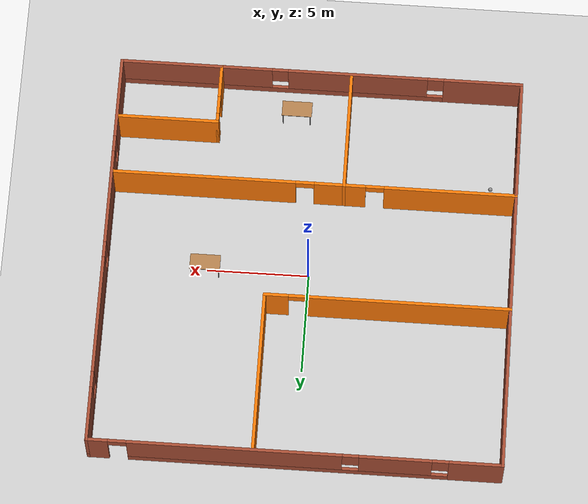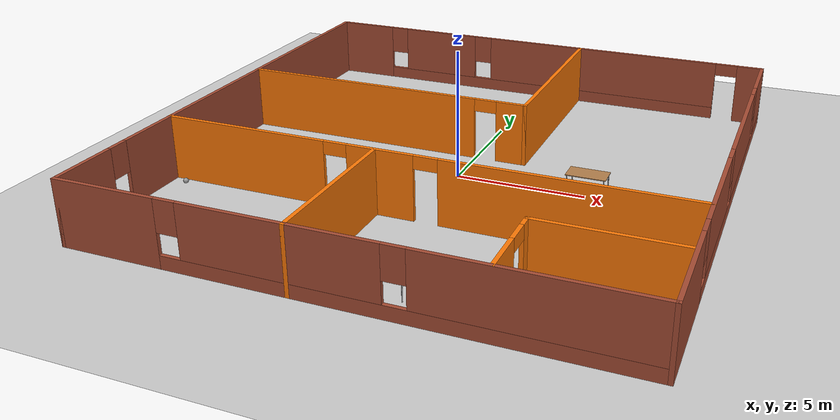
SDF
<sdf version="1.6">
 <world name="default">
  <plugin name="welcome_message" filename="libwelcome_message.so"/>
  <light name="sun" type="directional">
   <pose>0 0 10 0 -0 0</pose>
   <diffuse>0.8 0.8 0.8 1</diffuse>
   <specular>0.2 0.2 0.2 1</specular>
   <attenuation>
    <range>1000</range>
    <constant>0.9</constant>
    <linear>0.01</linear>
    <quadratic>0.001</quadratic>
   </attenuation>
   <direction>-0.5 0.1 -0.9</direction>
  </light>
  <model name="ground_plane">
   <static>1</static>
   <link name="link">
    <collision name="collision">
     <geometry><plane><normal>0 0 1</normal><size>100 100</size></plane></geometry>
     <surface><friction><ode><mu>100</mu><mu2>50</mu2></ode></friction></surface>
    </collision>
    <visual name="visual">
     <cast_shadows>0</cast_shadows>
     <geometry><plane><normal>0 0 1</normal><size>100 100</size></plane></geometry>
     <material>
      <script><uri>file://media/materials/scripts/gazebo.material</uri><name>Gazebo/Grey</name></script>
     </material>
    </visual>
   </link>
  </model>
  <gravity>0 0 -9.8</gravity>
  <magnetic_field>6e-06 2.3e-05 -4.2e-05</magnetic_field>
  <atmosphere type="adiabatic"/>
  <physics name="default_physics" default="0" type="ode">
   <max_step_size>0.001</max_step_size>
   <real_time_factor>1</real_time_factor>
   <real_time_update_rate>1000</real_time_update_rate>
  </physics>
  <scene><ambient>0.4 0.4 0.4 1</ambient><background>0.7 0.7 0.7 1</background><shadows>1</shadows></scene>
  <spherical_coordinates>
   <surface_model>EARTH_WGS84</surface_model>
   <latitude_deg>0</latitude_deg>
   <longitude_deg>0</longitude_deg>
   <elevation>0</elevation>
   <heading_deg>0</heading_deg>
  </spherical_coordinates>
  <model name="Building">
   <link name="Wall_0">
    <pose>0 10 0 0 -0 0</pose>
    <visual name="Wall_0_Visual_0">
     <pose>-8.74573 0 1.25 0 -0 0</pose>
     <geometry><box><size>2.65853 0.15 2.5</size></box></geometry>
     <material>
      <script><uri>file://media/materials/scripts/gazebo.material</uri><name>Gazebo/Bricks</name></script>
      <ambient>1 1 1 1</ambient>
     </material>
     <meta><layer>0</layer></meta>
    </visual>
    <collision name="Wall_0_Collision_0">
     <geometry><box><size>2.65853 0.15 2.5</size></box></geometry>
     <pose>-8.74573 0 1.25 0 -0 0</pose>
    </collision>
    <visual name="Wall_0_Visual_1">
     <pose>9.52682 0 1.25 0 -0 0</pose>
     <geometry><box><size>1.09635 0.15 2.5</size></box></geometry>
     <material>
      <script><uri>file://media/materials/scripts/gazebo.material</uri><name>Gazebo/Bricks</name></script>
      <ambient>1 1 1 1</ambient>
     </material>
     <meta><layer>0</layer></meta>
    </visual>
    <collision name="Wall_0_Collision_1">
     <geometry><box><size>1.09635 0.15 2.5</size></box></geometry>
     <pose>9.52682 0 1.25 0 -0 0</pose>
    </collision>
    <visual name="Wall_0_Visual_2">
     <pose>0.331089 0 0.25 0 -0 0</pose>
     <geometry><box><size>15.4951 0.15 0.5</size></box></geometry>
     <material>
      <script><uri>file://media/materials/scripts/gazebo.material</uri><name>Gazebo/Bricks</name></script>
      <ambient>1 1 1 1</ambient>
     </material>
     <meta><layer>0</layer></meta>
    </visual>
    <collision name="Wall_0_Collision_2">
     <geometry><box><size>15.4951 0.15 0.5</size></box></geometry>
     <pose>0.331089 0 0.25 0 -0 0</pose>
    </collision>
    <visual name="Wall_0_Visual_3">
     <pose>-4.85741 0 1.5 0 -0 0</pose>
     <geometry><box><size>3.51812 0.15 2</size></box></geometry>
     <material>
      <script><uri>file://media/materials/scripts/gazebo.material</uri><name>Gazebo/Bricks</name></script>
      <ambient>1 1 1 1</ambient>
     </material>
     <meta><layer>0</layer></meta>
    </visual>
    <collision name="Wall_0_Collision_3">
     <geometry><box><size>3.51812 0.15 2</size></box></geometry>
     <pose>-4.85741 0 1.5 0 -0 0</pose>
    </collision>
    <visual name="Wall_0_Visual_4">
     <pose>2.89015 0 1.5 0 -0 0</pose>
     <geometry><box><size>10.377 0.15 2</size></box></geometry>
     <material>
      <script><uri>file://media/materials/scripts/gazebo.material</uri><name>Gazebo/Bricks</name></script>
      <ambient>1 1 1 1</ambient>
     </material>
     <meta><layer>0</layer></meta>
    </visual>
    <collision name="Wall_0_Collision_4">
     <geometry><box><size>10.377 0.15 2</size></box></geometry>
     <pose>2.89015 0 1.5 0 -0 0</pose>
    </collision>
    <visual name="Wall_0_Visual_5">
     <pose>-7.01647 0 1.9 0 -0 0</pose>
     <geometry><box><size>0.8 0.15 1.2</size></box></geometry>
     <material>
      <script><uri>file://media/materials/scripts/gazebo.material</uri><name>Gazebo/Bricks</name></script>
      <ambient>1 1 1 1</ambient>
     </material>
     <meta><layer>0</layer></meta>
    </visual>
    <collision name="Wall_0_Collision_5">
     <geometry><box><size>0.8 0.15 1.2</size></box></geometry>
     <pose>-7.01647 0 1.9 0 -0 0</pose>
    </collision>
    <visual name="Wall_0_Visual_6">
     <pose>-2.69835 0 1.9 0 -0 0</pose>
     <geometry><box><size>0.8 0.15 1.2</size></box></geometry>
     <material>
      <script><uri>file://media/materials/scripts/gazebo.material</uri><name>Gazebo/Bricks</name></script>
      <ambient>1 1 1 1</ambient>
     </material>
     <meta><layer>0</layer></meta>
    </visual>
    <collision name="Wall_0_Collision_6">
     <geometry><box><size>0.8 0.15 1.2</size></box></geometry>
     <pose>-2.69835 0 1.9 0 -0 0</pose>
    </collision>
    <visual name="Wall_0_Visual_7">
     <pose>8.52865 0 2.25 0 -0 0</pose>
     <geometry><box><size>0.9 0.15 0.5</size></box></geometry>
     <material>
      <script><uri>file://media/materials/scripts/gazebo.material</uri><name>Gazebo/Bricks</name></script>
      <ambient>1 1 1 1</ambient>
     </material>
     <meta><layer>0</layer></meta>
    </visual>
    <collision name="Wall_0_Collision_7">
     <geometry><box><size>0.9 0.15 0.5</size></box></geometry>
     <pose>8.52865 0 2.25 0 -0 0</pose>
    </collision>
   </link>
   <link name="Wall_10">
    <collision name="Wall_10_Collision">
     <geometry><box><size>8.15 0.15 2.5</size></box></geometry>
     <pose>0 0 1.25 0 -0 0</pose>
    </collision>
    <visual name="Wall_10_Visual">
     <pose>0 0 1.25 0 -0 0</pose>
     <geometry><box><size>8.15 0.15 2.5</size></box></geometry>
     <material>
      <script><uri>file://media/materials/scripts/gazebo.material</uri><name>Gazebo/Grey</name></script>
      <ambient>0.996078 0.47451 0.0196078 1</ambient>
     </material>
     <meta><layer>0</layer></meta>
    </visual>
    <pose>2 6 0 0 -0 1.5708</pose>
   </link>
   <link name="Wall_12">
    <pose>0 -4 0 0 -0 0</pose>
    <visual name="Wall_12_Visual_0">
     <pose>-6.77572 0 1.25 0 -0 0</pose>
     <geometry><box><size>6.59856 0.15 2.5</size></box></geometry>
     <material>
      <script><uri>file://media/materials/scripts/gazebo.material</uri><name>Gazebo/Grey</name></script>
      <ambient>0.996078 0.47451 0.0196078 1</ambient>
     </material>
     <meta><layer>0</layer></meta>
    </visual>
    <collision name="Wall_12_Collision_0">
     <geometry><box><size>6.59856 0.15 2.5</size></box></geometry>
     <pose>-6.77572 0 1.25 0 -0 0</pose>
    </collision>
    <visual name="Wall_12_Visual_1">
     <pose>-1.29743 0 1.25 0 -0 0</pose>
     <geometry><box><size>2.55803 0.15 2.5</size></box></geometry>
     <material>
      <script><uri>file://media/materials/scripts/gazebo.material</uri><name>Gazebo/Grey</name></script>
      <ambient>0.996078 0.47451 0.0196078 1</ambient>
     </material>
     <meta><layer>0</layer></meta>
    </visual>
    <collision name="Wall_12_Collision_1">
     <geometry><box><size>2.55803 0.15 2.5</size></box></geometry>
     <pose>-1.29743 0 1.25 0 -0 0</pose>
    </collision>
    <visual name="Wall_12_Visual_2">
     <pose>5.47829 0 1.25 0 -0 0</pose>
     <geometry><box><size>9.19341 0.15 2.5</size></box></geometry>
     <material>
      <script><uri>file://media/materials/scripts/gazebo.material</uri><name>Gazebo/Grey</name></script>
      <ambient>0.996078 0.47451 0.0196078 1</ambient>
     </material>
     <meta><layer>0</layer></meta>
    </visual>
    <collision name="Wall_12_Collision_2">
     <geometry><box><size>9.19341 0.15 2.5</size></box></geometry>
     <pose>5.47829 0 1.25 0 -0 0</pose>
    </collision>
    <visual name="Wall_12_Visual_3">
     <pose>-3.02644 0 2.25 0 -0 0</pose>
     <geometry><box><size>0.9 0.15 0.5</size></box></geometry>
     <material>
      <script><uri>file://media/materials/scripts/gazebo.material</uri><name>Gazebo/Grey</name></script>
      <ambient>0.996078 0.47451 0.0196078 1</ambient>
     </material>
     <meta><layer>0</layer></meta>
    </visual>
    <collision name="Wall_12_Collision_3">
     <geometry><box><size>0.9 0.15 0.5</size></box></geometry>
     <pose>-3.02644 0 2.25 0 -0 0</pose>
    </collision>
    <visual name="Wall_12_Visual_4">
     <pose>0.431586 0 2.25 0 -0 0</pose>
     <geometry><box><size>0.9 0.15 0.5</size></box></geometry>
     <material>
      <script><uri>file://media/materials/scripts/gazebo.material</uri><name>Gazebo/Grey</name></script>
      <ambient>0.996078 0.47451 0.0196078 1</ambient>
     </material>
     <meta><layer>0</layer></meta>
    </visual>
    <collision name="Wall_12_Collision_4">
     <geometry><box><size>0.9 0.15 0.5</size></box></geometry>
     <pose>0.431586 0 2.25 0 -0 0</pose>
    </collision>
   </link>
   <link name="Wall_14">
    <collision name="Wall_14_Collision">
     <geometry><box><size>6.15 0.15 2.5</size></box></geometry>
     <pose>0 0 1.25 0 -0 0</pose>
    </collision>
    <visual name="Wall_14_Visual">
     <pose>0 0 1.25 0 -0 0</pose>
     <geometry><box><size>6.15 0.15 2.5</size></box></geometry>
     <material>
      <script><uri>file://media/materials/scripts/gazebo.material</uri><name>Gazebo/Grey</name></script>
      <ambient>0.996078 0.47451 0.0196078 1</ambient>
     </material>
     <meta><layer>0</layer></meta>
    </visual>
    <pose>-1.5 -7 0 0 0 -1.5708</pose>
   </link>
   <link name="Wall_16">
    <pose>5 -8.5 0 0 -0 1.5708</pose>
    <visual name="Wall_16_Visual_0">
     <pose>-0.715498 0 1.25 0 -0 0</pose>
     <geometry><box><size>1.719 0.15 2.5</size></box></geometry>
     <material>
      <script><uri>file://media/materials/scripts/gazebo.material</uri><name>Gazebo/Grey</name></script>
      <ambient>0.996078 0.47451 0.0196078 1</ambient>
     </material>
     <meta><layer>0</layer></meta>
    </visual>
    <collision name="Wall_16_Collision_0">
     <geometry><box><size>1.719 0.15 2.5</size></box></geometry>
     <pose>-0.715498 0 1.25 0 -0 0</pose>
    </collision>
    <visual name="Wall_16_Visual_1">
     <pose>1.3095 0 1.25 0 -0 0</pose>
     <geometry><box><size>0.530996 0.15 2.5</size></box></geometry>
     <material>
      <script><uri>file://media/materials/scripts/gazebo.material</uri><name>Gazebo/Grey</name></script>
      <ambient>0.996078 0.47451 0.0196078 1</ambient>
     </material>
     <meta><layer>0</layer></meta>
    </visual>
    <collision name="Wall_16_Collision_1">
     <geometry><box><size>0.530996 0.15 2.5</size></box></geometry>
     <pose>1.3095 0 1.25 0 -0 0</pose>
    </collision>
    <visual name="Wall_16_Visual_2">
     <pose>0.594004 0 2.25 0 -0 0</pose>
     <geometry><box><size>0.9 0.15 0.5</size></box></geometry>
     <material>
      <script><uri>file://media/materials/scripts/gazebo.material</uri><name>Gazebo/Grey</name></script>
      <ambient>0.996078 0.47451 0.0196078 1</ambient>
     </material>
     <meta><layer>0</layer></meta>
    </visual>
    <collision name="Wall_16_Collision_2">
     <geometry><box><size>0.9 0.15 0.5</size></box></geometry>
     <pose>0.594004 0 2.25 0 -0 0</pose>
    </collision>
   </link>
   <link name="Wall_18">
    <collision name="Wall_18_Collision">
     <geometry><box><size>5 0.15 2.5</size></box></geometry>
     <pose>0 0 1.25 0 -0 0</pose>
    </collision>
    <visual name="Wall_18_Visual">
     <pose>0 0 1.25 0 -0 0</pose>
     <geometry><box><size>5 0.15 2.5</size></box></geometry>
     <material>
      <script><uri>file://media/materials/scripts/gazebo.material</uri><name>Gazebo/Grey</name></script>
      <ambient>0.996078 0.47451 0.0196078 1</ambient>
     </material>
     <meta><layer>0</layer></meta>
    </visual>
    <pose>7.425 -7 0 0 -0 0</pose>
   </link>
   <link name="Wall_2">
    <pose>-10 0 0 0 0 -1.5708</pose>
    <visual name="Wall_2_Visual_0">
     <pose>-1.74058 0 1.25 0 -0 0</pose>
     <geometry><box><size>16.6688 0.15 2.5</size></box></geometry>
     <material>
      <script><uri>file://media/materials/scripts/gazebo.material</uri><name>Gazebo/Bricks</name></script>
      <ambient>1 1 1 1</ambient>
     </material>
     <meta><layer>0</layer></meta>
    </visual>
    <collision name="Wall_2_Collision_0">
     <geometry><box><size>16.6688 0.15 2.5</size></box></geometry>
     <pose>-1.74058 0 1.25 0 -0 0</pose>
    </collision>
    <visual name="Wall_2_Visual_1">
     <pose>8.33442 0 0.25 0 -0 0</pose>
     <geometry><box><size>3.48116 0.15 0.5</size></box></geometry>
     <material>
      <script><uri>file://media/materials/scripts/gazebo.material</uri><name>Gazebo/Bricks</name></script>
      <ambient>1 1 1 1</ambient>
     </material>
     <meta><layer>0</layer></meta>
    </visual>
    <collision name="Wall_2_Collision_1">
     <geometry><box><size>3.48116 0.15 0.5</size></box></geometry>
     <pose>8.33442 0 0.25 0 -0 0</pose>
    </collision>
    <visual name="Wall_2_Visual_2">
     <pose>8.73442 0 1.5 0 -0 0</pose>
     <geometry><box><size>2.68116 0.15 2</size></box></geometry>
     <material>
      <script><uri>file://media/materials/scripts/gazebo.material</uri><name>Gazebo/Bricks</name></script>
      <ambient>1 1 1 1</ambient>
     </material>
     <meta><layer>0</layer></meta>
    </visual>
    <collision name="Wall_2_Collision_2">
     <geometry><box><size>2.68116 0.15 2</size></box></geometry>
     <pose>8.73442 0 1.5 0 -0 0</pose>
    </collision>
    <visual name="Wall_2_Visual_3">
     <pose>6.99384 0 1.9 0 -0 0</pose>
     <geometry><box><size>0.8 0.15 1.2</size></box></geometry>
     <material>
      <script><uri>file://media/materials/scripts/gazebo.material</uri><name>Gazebo/Bricks</name></script>
      <ambient>1 1 1 1</ambient>
     </material>
     <meta><layer>0</layer></meta>
    </visual>
    <collision name="Wall_2_Collision_3">
     <geometry><box><size>0.8 0.15 1.2</size></box></geometry>
     <pose>6.99384 0 1.9 0 -0 0</pose>
    </collision>
   </link>
   <link name="Wall_4">
    <pose>0 -10 0 0 -0 0</pose>
    <visual name="Wall_4_Visual_0">
     <pose>-8.09282 0 1.25 0 -0 0</pose>
     <geometry><box><size>3.96436 0.15 2.5</size></box></geometry>
     <material>
      <script><uri>file://media/materials/scripts/gazebo.material</uri><name>Gazebo/Bricks</name></script>
      <ambient>1 1 1 1</ambient>
     </material>
     <meta><layer>0</layer></meta>
    </visual>
    <collision name="Wall_4_Collision_0">
     <geometry><box><size>3.96436 0.15 2.5</size></box></geometry>
     <pose>-8.09282 0 1.25 0 -0 0</pose>
    </collision>
    <visual name="Wall_4_Visual_1">
     <pose>1.98218 0 0.25 0 -0 0</pose>
     <geometry><box><size>16.1856 0.15 0.5</size></box></geometry>
     <material>
      <script><uri>file://media/materials/scripts/gazebo.material</uri><name>Gazebo/Bricks</name></script>
      <ambient>1 1 1 1</ambient>
     </material>
     <meta><layer>0</layer></meta>
    </visual>
    <collision name="Wall_4_Collision_1">
     <geometry><box><size>16.1856 0.15 0.5</size></box></geometry>
     <pose>1.98218 0 0.25 0 -0 0</pose>
    </collision>
    <visual name="Wall_4_Visual_2">
     <pose>-1.82339 0 1.5 0 -0 0</pose>
     <geometry><box><size>6.97451 0.15 2</size></box></geometry>
     <material>
      <script><uri>file://media/materials/scripts/gazebo.material</uri><name>Gazebo/Bricks</name></script>
      <ambient>1 1 1 1</ambient>
     </material>
     <meta><layer>0</layer></meta>
    </visual>
    <collision name="Wall_4_Collision_2">
     <geometry><box><size>6.97451 0.15 2</size></box></geometry>
     <pose>-1.82339 0 1.5 0 -0 0</pose>
    </collision>
    <visual name="Wall_4_Visual_3">
     <pose>6.26943 0 1.5 0 -0 0</pose>
     <geometry><box><size>7.61113 0.15 2</size></box></geometry>
     <material>
      <script><uri>file://media/materials/scripts/gazebo.material</uri><name>Gazebo/Bricks</name></script>
      <ambient>1 1 1 1</ambient>
     </material>
     <meta><layer>0</layer></meta>
    </visual>
    <collision name="Wall_4_Collision_3">
     <geometry><box><size>7.61113 0.15 2</size></box></geometry>
     <pose>6.26943 0 1.5 0 -0 0</pose>
    </collision>
    <visual name="Wall_4_Visual_4">
     <pose>-5.71064 0 1.9 0 -0 0</pose>
     <geometry><box><size>0.8 0.15 1.2</size></box></geometry>
     <material>
      <script><uri>file://media/materials/scripts/gazebo.material</uri><name>Gazebo/Bricks</name></script>
      <ambient>1 1 1 1</ambient>
     </material>
     <meta><layer>0</layer></meta>
    </visual>
    <collision name="Wall_4_Collision_4">
     <geometry><box><size>0.8 0.15 1.2</size></box></geometry>
     <pose>-5.71064 0 1.9 0 -0 0</pose>
    </collision>
    <visual name="Wall_4_Visual_5">
     <pose>2.06387 0 1.9 0 -0 0</pose>
     <geometry><box><size>0.8 0.15 1.2</size></box></geometry>
     <material>
      <script><uri>file://media/materials/scripts/gazebo.material</uri><name>Gazebo/Bricks</name></script>
      <ambient>1 1 1 1</ambient>
     </material>
     <meta><layer>0</layer></meta>
    </visual>
    <collision name="Wall_4_Collision_5">
     <geometry><box><size>0.8 0.15 1.2</size></box></geometry>
     <pose>2.06387 0 1.9 0 -0 0</pose>
    </collision>
   </link>
   <link name="Wall_6">
    <pose>10 0 0 0 -0 1.5708</pose>
    <visual name="Wall_6_Visual_0">
     <pose>-7.97808 0 1.25 0 -0 0</pose>
     <geometry><box><size>4.19385 0.15 2.5</size></box></geometry>
     <material>
      <script><uri>file://media/materials/scripts/gazebo.material</uri><name>Gazebo/Bricks</name></script>
      <ambient>1 1 1 1</ambient>
     </material>
     <meta><layer>0</layer></meta>
    </visual>
    <collision name="Wall_6_Collision_0">
     <geometry><box><size>4.19385 0.15 2.5</size></box></geometry>
     <pose>-7.97808 0 1.25 0 -0 0</pose>
    </collision>
    <visual name="Wall_6_Visual_1">
     <pose>2.09692 0 0.25 0 -0 0</pose>
     <geometry><box><size>15.9562 0.15 0.5</size></box></geometry>
     <material>
      <script><uri>file://media/materials/scripts/gazebo.material</uri><name>Gazebo/Bricks</name></script>
      <ambient>1 1 1 1</ambient>
     </material>
     <meta><layer>0</layer></meta>
    </visual>
    <collision name="Wall_6_Collision_1">
     <geometry><box><size>15.9562 0.15 0.5</size></box></geometry>
     <pose>2.09692 0 0.25 0 -0 0</pose>
    </collision>
    <visual name="Wall_6_Visual_2">
     <pose>-2.64967 0 1.5 0 -0 0</pose>
     <geometry><box><size>4.86297 0.15 2</size></box></geometry>
     <material>
      <script><uri>file://media/materials/scripts/gazebo.material</uri><name>Gazebo/Bricks</name></script>
      <ambient>1 1 1 1</ambient>
     </material>
     <meta><layer>0</layer></meta>
    </visual>
    <collision name="Wall_6_Collision_2">
     <geometry><box><size>4.86297 0.15 2</size></box></geometry>
     <pose>-2.64967 0 1.5 0 -0 0</pose>
    </collision>
    <visual name="Wall_6_Visual_3">
     <pose>3.56268 0 1.5 0 -0 0</pose>
     <geometry><box><size>5.96171 0.15 2</size></box></geometry>
     <material>
      <script><uri>file://media/materials/scripts/gazebo.material</uri><name>Gazebo/Bricks</name></script>
      <ambient>1 1 1 1</ambient>
     </material>
     <meta><layer>0</layer></meta>
    </visual>
    <collision name="Wall_6_Collision_3">
     <geometry><box><size>5.96171 0.15 2</size></box></geometry>
     <pose>3.56268 0 1.5 0 -0 0</pose>
    </collision>
    <visual name="Wall_6_Visual_4">
     <pose>8.70927 0 1.5 0 -0 0</pose>
     <geometry><box><size>2.73147 0.15 2</size></box></geometry>
     <material>
      <script><uri>file://media/materials/scripts/gazebo.material</uri><name>Gazebo/Bricks</name></script>
      <ambient>1 1 1 1</ambient>
     </material>
     <meta><layer>0</layer></meta>
    </visual>
    <collision name="Wall_6_Collision_4">
     <geometry><box><size>2.73147 0.15 2</size></box></geometry>
     <pose>8.70927 0 1.5 0 -0 0</pose>
    </collision>
    <visual name="Wall_6_Visual_5">
     <pose>-5.48115 0 1.9 0 -0 0</pose>
     <geometry><box><size>0.8 0.15 1.2</size></box></geometry>
     <material>
      <script><uri>file://media/materials/scripts/gazebo.material</uri><name>Gazebo/Bricks</name></script>
      <ambient>1 1 1 1</ambient>
     </material>
     <meta><layer>0</layer></meta>
    </visual>
    <collision name="Wall_6_Collision_5">
     <geometry><box><size>0.8 0.15 1.2</size></box></geometry>
     <pose>-5.48115 0 1.9 0 -0 0</pose>
    </collision>
    <visual name="Wall_6_Visual_6">
     <pose>0.18182 0 1.9 0 -0 0</pose>
     <geometry><box><size>0.8 0.15 1.2</size></box></geometry>
     <material>
      <script><uri>file://media/materials/scripts/gazebo.material</uri><name>Gazebo/Bricks</name></script>
      <ambient>1 1 1 1</ambient>
     </material>
     <meta><layer>0</layer></meta>
    </visual>
    <collision name="Wall_6_Collision_6">
     <geometry><box><size>0.8 0.15 1.2</size></box></geometry>
     <pose>0.18182 0 1.9 0 -0 0</pose>
    </collision>
    <visual name="Wall_6_Visual_7">
     <pose>6.94353 0 1.9 0 -0 0</pose>
     <geometry><box><size>0.8 0.15 1.2</size></box></geometry>
     <material>
      <script><uri>file://media/materials/scripts/gazebo.material</uri><name>Gazebo/Bricks</name></script>
      <ambient>1 1 1 1</ambient>
     </material>
     <meta><layer>0</layer></meta>
    </visual>
    <collision name="Wall_6_Collision_7">
     <geometry><box><size>0.8 0.15 1.2</size></box></geometry>
     <pose>6.94353 0 1.9 0 -0 0</pose>
    </collision>
   </link>
   <link name="Wall_8">
    <pose>-4 2 0 0 -0 0</pose>
    <visual name="Wall_8_Visual_0">
     <pose>-1.07331 0 1.25 0 -0 0</pose>
     <geometry><box><size>10.0034 0.15 2.5</size></box></geometry>
     <material>
      <script><uri>file://media/materials/scripts/gazebo.material</uri><name>Gazebo/Grey</name></script>
      <ambient>0.996078 0.47451 0.0196078 1</ambient>
     </material>
     <meta><layer>0</layer></meta>
    </visual>
    <collision name="Wall_8_Collision_0">
     <geometry><box><size>10.0034 0.15 2.5</size></box></geometry>
     <pose>-1.07331 0 1.25 0 -0 0</pose>
    </collision>
    <visual name="Wall_8_Visual_1">
     <pose>5.45169 0 1.25 0 -0 0</pose>
     <geometry><box><size>1.24661 0.15 2.5</size></box></geometry>
     <material>
      <script><uri>file://media/materials/scripts/gazebo.material</uri><name>Gazebo/Grey</name></script>
      <ambient>0.996078 0.47451 0.0196078 1</ambient>
     </material>
     <meta><layer>0</layer></meta>
    </visual>
    <collision name="Wall_8_Collision_1">
     <geometry><box><size>1.24661 0.15 2.5</size></box></geometry>
     <pose>5.45169 0 1.25 0 -0 0</pose>
    </collision>
    <visual name="Wall_8_Visual_2">
     <pose>4.37839 0 2.25 0 -0 0</pose>
     <geometry><box><size>0.9 0.15 0.5</size></box></geometry>
     <material>
      <script><uri>file://media/materials/scripts/gazebo.material</uri><name>Gazebo/Grey</name></script>
      <ambient>0.996078 0.47451 0.0196078 1</ambient>
     </material>
     <meta><layer>0</layer></meta>
    </visual>
    <collision name="Wall_8_Collision_2">
     <geometry><box><size>0.9 0.15 0.5</size></box></geometry>
     <pose>4.37839 0 2.25 0 -0 0</pose>
    </collision>
   </link>
   <static>1</static>
  </model>
  <model name="table">
   <static>1</static>
   <link name="link">
    <collision name="surface">
     <pose>0 0 1 0 -0 0</pose>
     <geometry><box><size>1.5 0.8 0.03</size></box></geometry>
     <surface><friction><ode><mu>0.6</mu><mu2>0.6</mu2></ode></friction></surface>
    </collision>
    <visual name="visual1">
     <pose>0 0 1 0 -0 0</pose>
     <geometry><box><size>1.5 0.8 0.03</size></box></geometry>
     <material>
      <script><uri>file://media/materials/scripts/gazebo.material</uri><name>Gazebo/Wood</name></script>
     </material>
    </visual>
    <collision name="front_left_leg">
     <pose>0.68 0.38 0.5 0 -0 0</pose>
     <geometry><cylinder><radius>0.02</radius><length>1</length></cylinder></geometry>
    </collision>
    <visual name="front_left_leg">
     <pose>0.68 0.38 0.5 0 -0 0</pose>
     <geometry><cylinder><radius>0.02</radius><length>1</length></cylinder></geometry>
     <material>
      <script><uri>file://media/materials/scripts/gazebo.material</uri><name>Gazebo/Grey</name></script>
     </material>
    </visual>
    <collision name="front_right_leg">
     <pose>0.68 -0.38 0.5 0 -0 0</pose>
     <geometry><cylinder><radius>0.02</radius><length>1</length></cylinder></geometry>
    </collision>
    <visual name="front_right_leg">
     <pose>0.68 -0.38 0.5 0 -0 0</pose>
     <geometry><cylinder><radius>0.02</radius><length>1</length></cylinder></geometry>
     <material>
      <script><uri>file://media/materials/scripts/gazebo.material</uri><name>Gazebo/Grey</name></script>
     </material>
    </visual>
    <collision name="back_right_leg">
     <pose>-0.68 -0.38 0.5 0 -0 0</pose>
     <geometry><cylinder><radius>0.02</radius><length>1</length></cylinder></geometry>
    </collision>
    <visual name="back_right_leg">
     <pose>-0.68 -0.38 0.5 0 -0 0</pose>
     <geometry><cylinder><radius>0.02</radius><length>1</length></cylinder></geometry>
     <material>
      <script><uri>file://media/materials/scripts/gazebo.material</uri><name>Gazebo/Grey</name></script>
     </material>
    </visual>
    <collision name="back_left_leg">
     <pose>-0.68 0.38 0.5 0 -0 0</pose>
     <geometry><cylinder><radius>0.02</radius><length>1</length></cylinder></geometry>
    </collision>
    <visual name="back_left_leg">
     <pose>-0.68 0.38 0.5 0 -0 0</pose>
     <geometry><cylinder><radius>0.02</radius><length>1</length></cylinder></geometry>
     <material>
      <script><uri>file://media/materials/scripts/gazebo.material</uri><name>Gazebo/Grey</name></script>
     </material>
    </visual>
   </link>
   <pose>1.13071 -8.60257 0 0 -0 0</pose>
  </model>
  <model name="table_0">
   <static>1</static>
   <link name="link">
    <collision name="surface">
     <pose>0 0 1 0 -0 0</pose>
     <geometry><box><size>1.5 0.8 0.03</size></box></geometry>
     <surface><friction><ode><mu>0.6</mu><mu2>0.6</mu2></ode></friction></surface>
    </collision>
    <visual name="visual1">
     <pose>0 0 1 0 -0 0</pose>
     <geometry><box><size>1.5 0.8 0.03</size></box></geometry>
     <material>
      <script><uri>file://media/materials/scripts/gazebo.material</uri><name>Gazebo/Wood</name></script>
     </material>
    </visual>
    <collision name="front_left_leg">
     <pose>0.68 0.38 0.5 0 -0 0</pose>
     <geometry><cylinder><radius>0.02</radius><length>1</length></cylinder></geometry>
    </collision>
    <visual name="front_left_leg">
     <pose>0.68 0.38 0.5 0 -0 0</pose>
     <geometry><cylinder><radius>0.02</radius><length>1</length></cylinder></geometry>
     <material>
      <script><uri>file://media/materials/scripts/gazebo.material</uri><name>Gazebo/Grey</name></script>
     </material>
    </visual>
    <collision name="front_right_leg">
     <pose>0.68 -0.38 0.5 0 -0 0</pose>
     <geometry><cylinder><radius>0.02</radius><length>1</length></cylinder></geometry>
    </collision>
    <visual name="front_right_leg">
     <pose>0.68 -0.38 0.5 0 -0 0</pose>
     <geometry><cylinder><radius>0.02</radius><length>1</length></cylinder></geometry>
     <material>
      <script><uri>file://media/materials/scripts/gazebo.material</uri><name>Gazebo/Grey</name></script>
     </material>
    </visual>
    <collision name="back_right_leg">
     <pose>-0.68 -0.38 0.5 0 -0 0</pose>
     <geometry><cylinder><radius>0.02</radius><length>1</length></cylinder></geometry>
    </collision>
    <visual name="back_right_leg">
     <pose>-0.68 -0.38 0.5 0 -0 0</pose>
     <geometry><cylinder><radius>0.02</radius><length>1</length></cylinder></geometry>
     <material>
      <script><uri>file://media/materials/scripts/gazebo.material</uri><name>Gazebo/Grey</name></script>
     </material>
    </visual>
    <collision name="back_left_leg">
     <pose>-0.68 0.38 0.5 0 -0 0</pose>
     <geometry><cylinder><radius>0.02</radius><length>1</length></cylinder></geometry>
    </collision>
    <visual name="back_left_leg">
     <pose>-0.68 0.38 0.5 0 -0 0</pose>
     <geometry><cylinder><radius>0.02</radius><length>1</length></cylinder></geometry>
     <material>
      <script><uri>file://media/materials/scripts/gazebo.material</uri><name>Gazebo/Grey</name></script>
     </material>
    </visual>
   </link>
   <pose>5.09958 -0.063516 0 0 -0 0</pose>
  </model>
  <model name="my_ball">
   <link name="link_0">
    <inertial>
     <mass>1</mass>
     <inertia><ixx>0.1</ixx><ixy>0</ixy><ixz>0</ixz><iyy>0.1</iyy><iyz>0</iyz><izz>0.1</izz></inertia>
    </inertial>
    <visual name="visual">
     <geometry><sphere><radius>0.1</radius></sphere></geometry>
     <material>
      <lighting>1</lighting>
      <script><uri>file://media/materials/scripts/gazebo.material</uri><name>Gazebo/Grey</name></script>
      <shader type="pixel"><normal_map>__default__</normal_map></shader>
      <ambient>1 1 1 1</ambient>
      <diffuse>1 1 1 1</diffuse>
      <specular>1 1 1 1</specular>
      <emissive>1 1 1 1</emissive>
     </material>
    </visual>
    <collision name="collision">
     <geometry><sphere><radius>0.1</radius></sphere></geometry>
     <surface>
      <friction>
       <ode><mu>1</mu><mu2>1</mu2><fdir1>0 0 0</fdir1><slip1>0</slip1><slip2>0</slip2></ode>
       <torsional>
        <coefficient>1</coefficient>
        <patch_radius>0</patch_radius>
        <surface_radius>0</surface_radius>
        <use_patch_radius>1</use_patch_radius>
        <ode><slip>0</slip></ode>
       </torsional>
      </friction>
      <bounce><restitution_coefficient>0</restitution_coefficient><threshold>1e+06</threshold></bounce>
      <contact>
       <collide_without_contact>0</collide_without_contact>
       <collide_without_contact_bitmask>1</collide_without_contact_bitmask>
       <collide_bitmask>1</collide_bitmask>
       <ode>
        <soft_cfm>0</soft_cfm>
        <soft_erp>0.2</soft_erp>
        <kp>1e+13</kp>
        <kd>1</kd>
        <max_vel>0.01</max_vel>
        <min_depth>0</min_depth>
       </ode>
       <bullet>
        <split_impulse>1</split_impulse>
        <split_impulse_penetration_threshold>-0.01</split_impulse_penetration_threshold>
        <soft_cfm>0</soft_cfm>
        <soft_erp>0.2</soft_erp>
        <kp>1e+13</kp>
        <kd>1</kd>
       </bullet>
      </contact>
     </surface>
    </collision>
   </link>
   <static>0</static>
   <pose>-8.76317 -5.07882 0.5 0 -0 0</pose>
  </model>
 </world>
</sdf>
